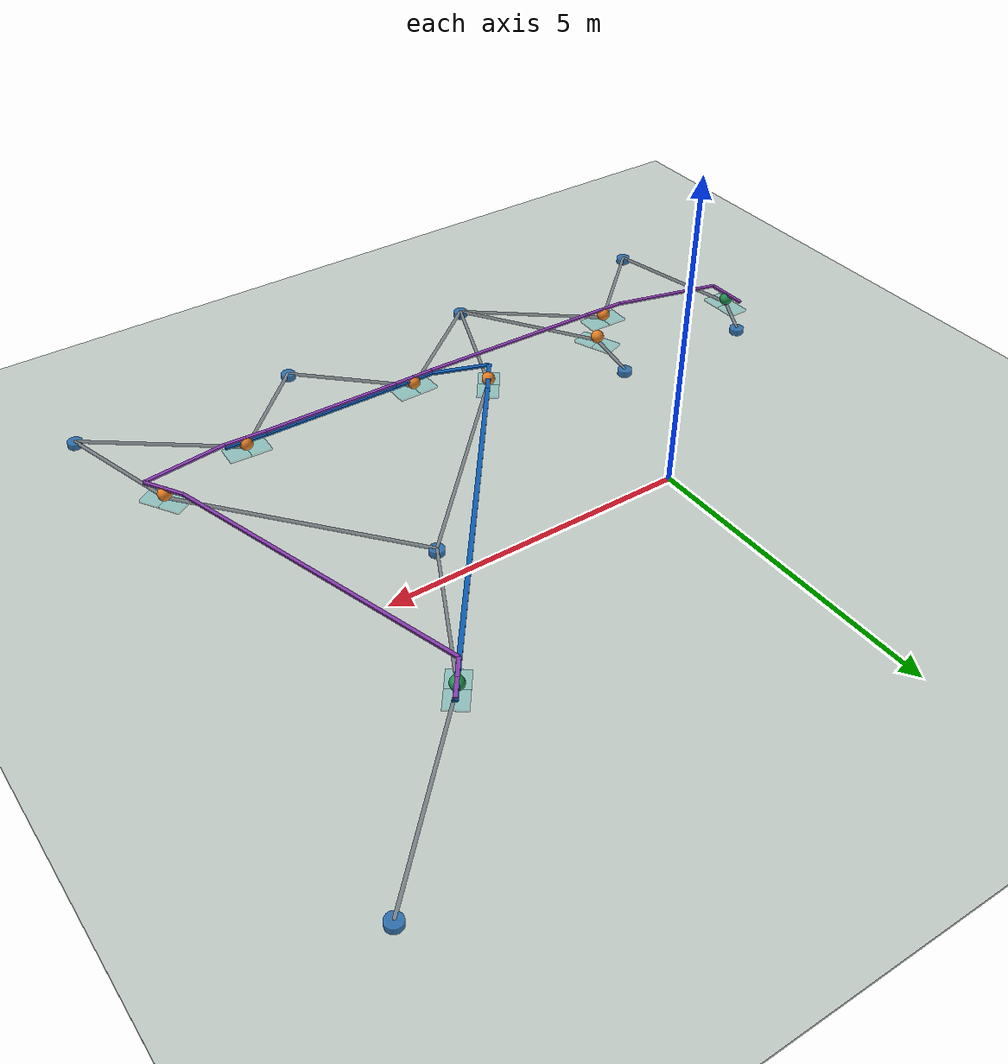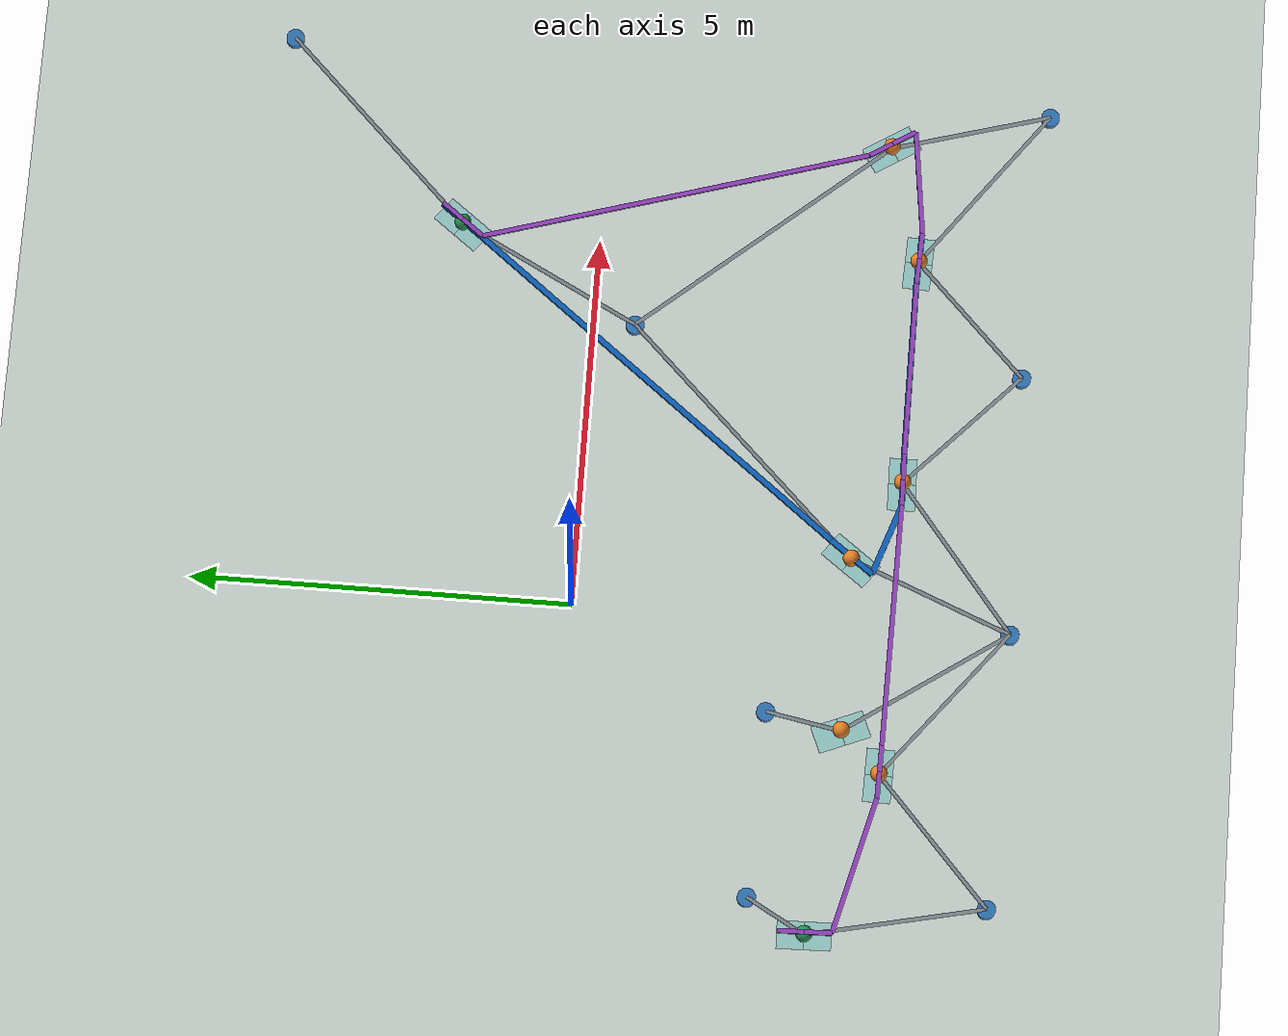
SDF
<?xml version='1.0' encoding='utf-8'?>
<sdf version="1.6">
  <world name="boxfusion_step30p1_00824_large_continuous_floor">
    <include>
      <uri>model://sun</uri>
    </include>
    <model name="step30p1_large_continuous_floor">
      <static>true</static>
      <pose>-15.0000 -15.0000 -0.0200 0 0 0</pose>
      <link name="link">
        <visual name="visual">
          <geometry>
            <box>
              <size>70.0000 70.0000 0.0400</size>
            </box>
          </geometry>
          <material>
            <ambient>0.760 0.800 0.780 1.000</ambient>
            <diffuse>0.760 0.800 0.780 1.000</diffuse>
          </material>
        </visual>
        <collision name="collision">
          <geometry>
            <box>
              <size>70.0000 70.0000 0.0400</size>
            </box>
          </geometry>
          <surface>
            <friction>
              <ode>
                <mu>1.0</mu>
                <mu2>1.0</mu2>
              </ode>
            </friction>
            <contact>
              <ode>
                <kp>1000000.0</kp>
                <kd>100.0</kd>
              </ode>
            </contact>
          </surface>
        </collision>
      </link>
    </model>
    <model name="carve_capsule_line_gw_00824_r1_r3_01_segment_0">
      <static>true</static>
      <pose>5.2008 1.9788 0.0300 0 0 -2.2212</pose>
      <link name="link">
        <visual name="visual">
          <geometry>
            <box>
              <size>0.3499 0.3600 0.0350</size>
            </box>
          </geometry>
          <material>
            <ambient>0.000 0.651 0.651 0.250</ambient>
            <diffuse>0.000 0.651 0.651 0.250</diffuse>
          </material>
        </visual>
      </link>
    </model>
    <model name="carve_capsule_line_gw_00824_r1_r3_01_segment_1">
      <static>true</static>
      <pose>4.9889 1.7003 0.0300 0 0 -2.2210</pose>
      <link name="link">
        <visual name="visual">
          <geometry>
            <box>
              <size>0.3500 0.3600 0.0350</size>
            </box>
          </geometry>
          <material>
            <ambient>0.000 0.651 0.651 0.250</ambient>
            <diffuse>0.000 0.651 0.651 0.250</diffuse>
          </material>
        </visual>
      </link>
    </model>
    <model name="carve_capsule_line_gw_00824_r3_r7_01_segment_0">
      <static>true</static>
      <pose>0.9765 -3.4474 0.0300 0 0 -2.2108</pose>
      <link name="link">
        <visual name="visual">
          <geometry>
            <box>
              <size>0.3500 0.3600 0.0350</size>
            </box>
          </geometry>
          <material>
            <ambient>0.000 0.651 0.651 0.250</ambient>
            <diffuse>0.000 0.651 0.651 0.250</diffuse>
          </material>
        </visual>
      </link>
    </model>
    <model name="carve_capsule_line_gw_00824_r3_r7_01_segment_1">
      <static>true</static>
      <pose>0.7674 -3.7282 0.0300 0 0 -2.2110</pose>
      <link name="link">
        <visual name="visual">
          <geometry>
            <box>
              <size>0.3500 0.3600 0.0350</size>
            </box>
          </geometry>
          <material>
            <ambient>0.000 0.651 0.651 0.250</ambient>
            <diffuse>0.000 0.651 0.651 0.250</diffuse>
          </material>
        </visual>
      </link>
    </model>
    <model name="carve_capsule_line_gw_00824_r3_r8_01_segment_0">
      <static>true</static>
      <pose>6.4952 -3.6257 0.0300 0 0 -1.0124</pose>
      <link name="link">
        <visual name="visual">
          <geometry>
            <box>
              <size>0.3499 0.3600 0.0350</size>
            </box>
          </geometry>
          <material>
            <ambient>0.000 0.651 0.651 0.250</ambient>
            <diffuse>0.000 0.651 0.651 0.250</diffuse>
          </material>
        </visual>
      </link>
    </model>
    <model name="carve_capsule_line_gw_00824_r3_r8_01_segment_1">
      <static>true</static>
      <pose>6.6806 -3.9225 0.0300 0 0 -1.0123</pose>
      <link name="link">
        <visual name="visual">
          <geometry>
            <box>
              <size>0.3501 0.3600 0.0350</size>
            </box>
          </geometry>
          <material>
            <ambient>0.000 0.651 0.651 0.250</ambient>
            <diffuse>0.000 0.651 0.651 0.250</diffuse>
          </material>
        </visual>
      </link>
    </model>
    <model name="carve_capsule_line_gw_00824_r7_r11_02_segment_0">
      <static>true</static>
      <pose>1.7784 -4.1936 0.0300 0 0 0.0106</pose>
      <link name="link">
        <visual name="visual">
          <geometry>
            <box>
              <size>0.3499 0.3600 0.0350</size>
            </box>
          </geometry>
          <material>
            <ambient>0.000 0.651 0.651 0.250</ambient>
            <diffuse>0.000 0.651 0.651 0.250</diffuse>
          </material>
        </visual>
      </link>
    </model>
    <model name="carve_capsule_line_gw_00824_r7_r11_02_segment_1">
      <static>true</static>
      <pose>2.1283 -4.1898 0.0300 0 0 0.0109</pose>
      <link name="link">
        <visual name="visual">
          <geometry>
            <box>
              <size>0.3500 0.3600 0.0350</size>
            </box>
          </geometry>
          <material>
            <ambient>0.000 0.651 0.651 0.250</ambient>
            <diffuse>0.000 0.651 0.651 0.250</diffuse>
          </material>
        </visual>
      </link>
    </model>
    <model name="carve_capsule_line_gw_00824_r7_r14_01_segment_0">
      <static>true</static>
      <pose>-1.8001 -4.1300 0.0300 0 0 3.1133</pose>
      <link name="link">
        <visual name="visual">
          <geometry>
            <box>
              <size>0.3500 0.3600 0.0350</size>
            </box>
          </geometry>
          <material>
            <ambient>0.000 0.651 0.651 0.250</ambient>
            <diffuse>0.000 0.651 0.651 0.250</diffuse>
          </material>
        </visual>
      </link>
    </model>
    <model name="carve_capsule_line_gw_00824_r7_r14_01_segment_1">
      <static>true</static>
      <pose>-2.1500 -4.1200 0.0300 0 0 3.1133</pose>
      <link name="link">
        <visual name="visual">
          <geometry>
            <box>
              <size>0.3500 0.3600 0.0350</size>
            </box>
          </geometry>
          <material>
            <ambient>0.000 0.651 0.651 0.250</ambient>
            <diffuse>0.000 0.651 0.651 0.250</diffuse>
          </material>
        </visual>
      </link>
    </model>
    <model name="carve_capsule_line_gw_00824_r7_r15_01_segment_0">
      <static>true</static>
      <pose>-1.3666 -3.7637 0.0300 0 0 1.9584</pose>
      <link name="link">
        <visual name="visual">
          <geometry>
            <box>
              <size>0.3501 0.3600 0.0350</size>
            </box>
          </geometry>
          <material>
            <ambient>0.000 0.651 0.651 0.250</ambient>
            <diffuse>0.000 0.651 0.651 0.250</diffuse>
          </material>
        </visual>
      </link>
    </model>
    <model name="carve_capsule_line_gw_00824_r7_r15_01_segment_1">
      <static>true</static>
      <pose>-1.4989 -3.4397 0.0300 0 0 1.9582</pose>
      <link name="link">
        <visual name="visual">
          <geometry>
            <box>
              <size>0.3499 0.3600 0.0350</size>
            </box>
          </geometry>
          <material>
            <ambient>0.000 0.651 0.651 0.250</ambient>
            <diffuse>0.000 0.651 0.651 0.250</diffuse>
          </material>
        </visual>
      </link>
    </model>
    <model name="carve_capsule_line_gw_00824_r8_r11_01_segment_0">
      <static>true</static>
      <pose>5.1873 -4.2317 0.0300 0 0 3.0916</pose>
      <link name="link">
        <visual name="visual">
          <geometry>
            <box>
              <size>0.3500 0.3600 0.0350</size>
            </box>
          </geometry>
          <material>
            <ambient>0.000 0.651 0.651 0.250</ambient>
            <diffuse>0.000 0.651 0.651 0.250</diffuse>
          </material>
        </visual>
      </link>
    </model>
    <model name="carve_capsule_line_gw_00824_r8_r11_01_segment_1">
      <static>true</static>
      <pose>4.8377 -4.2142 0.0300 0 0 3.0916</pose>
      <link name="link">
        <visual name="visual">
          <geometry>
            <box>
              <size>0.3500 0.3600 0.0350</size>
            </box>
          </geometry>
          <material>
            <ambient>0.000 0.651 0.651 0.250</ambient>
            <diffuse>0.000 0.651 0.651 0.250</diffuse>
          </material>
        </visual>
      </link>
    </model>
    <model name="carve_capsule_line_gw_00824_r14_r16_01_segment_0">
      <static>true</static>
      <pose>-4.1353 -3.4756 0.0300 0 0 1.5954</pose>
      <link name="link">
        <visual name="visual">
          <geometry>
            <box>
              <size>0.3500 0.3600 0.0350</size>
            </box>
          </geometry>
          <material>
            <ambient>0.000 0.651 0.651 0.250</ambient>
            <diffuse>0.000 0.651 0.651 0.250</diffuse>
          </material>
        </visual>
      </link>
    </model>
    <model name="carve_capsule_line_gw_00824_r14_r16_01_segment_1">
      <static>true</static>
      <pose>-4.1439 -3.1258 0.0300 0 0 1.5951</pose>
      <link name="link">
        <visual name="visual">
          <geometry>
            <box>
              <size>0.3500 0.3600 0.0350</size>
            </box>
          </geometry>
          <material>
            <ambient>0.000 0.651 0.651 0.250</ambient>
            <diffuse>0.000 0.651 0.651 0.250</diffuse>
          </material>
        </visual>
      </link>
    </model>
    <model name="gateway_center_gw_00824_r14_r16_01">
      <static>true</static>
      <pose>-4.1396 -3.3007 0.1600 0 0 0</pose>
      <link name="link">
        <visual name="visual">
          <geometry>
            <sphere>
              <radius>0.1100</radius>
            </sphere>
          </geometry>
          <material>
            <ambient>0.141 0.569 0.325 1.000</ambient>
            <diffuse>0.141 0.569 0.325 1.000</diffuse>
          </material>
        </visual>
      </link>
    </model>
    <model name="gateway_center_gw_00824_r1_r3_01">
      <static>true</static>
      <pose>5.0948 1.8396 0.1600 0 0 0</pose>
      <link name="link">
        <visual name="visual">
          <geometry>
            <sphere>
              <radius>0.1100</radius>
            </sphere>
          </geometry>
          <material>
            <ambient>0.141 0.569 0.325 1.000</ambient>
            <diffuse>0.141 0.569 0.325 1.000</diffuse>
          </material>
        </visual>
      </link>
    </model>
    <model name="gateway_center_gw_00824_r3_r7_01">
      <static>true</static>
      <pose>0.8720 -3.5878 0.1600 0 0 0</pose>
      <link name="link">
        <visual name="visual">
          <geometry>
            <sphere>
              <radius>0.1100</radius>
            </sphere>
          </geometry>
          <material>
            <ambient>0.902 0.494 0.133 1.000</ambient>
            <diffuse>0.902 0.494 0.133 1.000</diffuse>
          </material>
        </visual>
      </link>
    </model>
    <model name="gateway_center_gw_00824_r3_r8_01">
      <static>true</static>
      <pose>6.5879 -3.7741 0.1600 0 0 0</pose>
      <link name="link">
        <visual name="visual">
          <geometry>
            <sphere>
              <radius>0.1100</radius>
            </sphere>
          </geometry>
          <material>
            <ambient>0.902 0.494 0.133 1.000</ambient>
            <diffuse>0.902 0.494 0.133 1.000</diffuse>
          </material>
        </visual>
      </link>
    </model>
    <model name="gateway_center_gw_00824_r7_r11_02">
      <static>true</static>
      <pose>1.9533 -4.1917 0.1600 0 0 0</pose>
      <link name="link">
        <visual name="visual">
          <geometry>
            <sphere>
              <radius>0.1100</radius>
            </sphere>
          </geometry>
          <material>
            <ambient>0.902 0.494 0.133 1.000</ambient>
            <diffuse>0.902 0.494 0.133 1.000</diffuse>
          </material>
        </visual>
      </link>
    </model>
    <model name="gateway_center_gw_00824_r7_r14_01">
      <static>true</static>
      <pose>-1.9750 -4.1250 0.1600 0 0 0</pose>
      <link name="link">
        <visual name="visual">
          <geometry>
            <sphere>
              <radius>0.1100</radius>
            </sphere>
          </geometry>
          <material>
            <ambient>0.902 0.494 0.133 1.000</ambient>
            <diffuse>0.902 0.494 0.133 1.000</diffuse>
          </material>
        </visual>
      </link>
    </model>
    <model name="gateway_center_gw_00824_r7_r15_01">
      <static>true</static>
      <pose>-1.4328 -3.6017 0.1600 0 0 0</pose>
      <link name="link">
        <visual name="visual">
          <geometry>
            <sphere>
              <radius>0.1100</radius>
            </sphere>
          </geometry>
          <material>
            <ambient>0.902 0.494 0.133 1.000</ambient>
            <diffuse>0.902 0.494 0.133 1.000</diffuse>
          </material>
        </visual>
      </link>
    </model>
    <model name="gateway_center_gw_00824_r8_r11_01">
      <static>true</static>
      <pose>5.0125 -4.2229 0.1600 0 0 0</pose>
      <link name="link">
        <visual name="visual">
          <geometry>
            <sphere>
              <radius>0.1100</radius>
            </sphere>
          </geometry>
          <material>
            <ambient>0.902 0.494 0.133 1.000</ambient>
            <diffuse>0.902 0.494 0.133 1.000</diffuse>
          </material>
        </visual>
      </link>
    </model>
    <model name="room_anchor_room_1">
      <static>true</static>
      <pose>7.5455 4.2997 0.0500 0 0 0</pose>
      <link name="link">
        <visual name="visual">
          <geometry>
            <cylinder>
              <radius>0.1200</radius>
              <length>0.1000</length>
            </cylinder>
          </geometry>
          <material>
            <ambient>0.149 0.435 0.710 0.880</ambient>
            <diffuse>0.149 0.435 0.710 0.880</diffuse>
          </material>
        </visual>
      </link>
    </model>
    <model name="room_anchor_room_3">
      <static>true</static>
      <pose>3.8632 -0.5406 0.0500 0 0 0</pose>
      <link name="link">
        <visual name="visual">
          <geometry>
            <cylinder>
              <radius>0.1200</radius>
              <length>0.1000</length>
            </cylinder>
          </geometry>
          <material>
            <ambient>0.149 0.435 0.710 0.880</ambient>
            <diffuse>0.149 0.435 0.710 0.880</diffuse>
          </material>
        </visual>
      </link>
    </model>
    <model name="room_anchor_room_7">
      <static>true</static>
      <pose>0.0142 -5.7105 0.0500 0 0 0</pose>
      <link name="link">
        <visual name="visual">
          <geometry>
            <cylinder>
              <radius>0.1200</radius>
              <length>0.1000</length>
            </cylinder>
          </geometry>
          <material>
            <ambient>0.149 0.435 0.710 0.880</ambient>
            <diffuse>0.149 0.435 0.710 0.880</diffuse>
          </material>
        </visual>
      </link>
    </model>
    <model name="room_anchor_room_8">
      <static>true</static>
      <pose>7.1842 -5.8564 0.0500 0 0 0</pose>
      <link name="link">
        <visual name="visual">
          <geometry>
            <cylinder>
              <radius>0.1200</radius>
              <length>0.1000</length>
            </cylinder>
          </geometry>
          <material>
            <ambient>0.149 0.435 0.710 0.880</ambient>
            <diffuse>0.149 0.435 0.710 0.880</diffuse>
          </material>
        </visual>
      </link>
    </model>
    <model name="room_anchor_room_11">
      <static>true</static>
      <pose>3.5119 -5.6729 0.0500 0 0 0</pose>
      <link name="link">
        <visual name="visual">
          <geometry>
            <cylinder>
              <radius>0.1200</radius>
              <length>0.1000</length>
            </cylinder>
          </geometry>
          <material>
            <ambient>0.149 0.435 0.710 0.880</ambient>
            <diffuse>0.149 0.435 0.710 0.880</diffuse>
          </material>
        </visual>
      </link>
    </model>
    <model name="room_anchor_room_14">
      <static>true</static>
      <pose>-3.6327 -5.6071 0.0500 0 0 0</pose>
      <link name="link">
        <visual name="visual">
          <geometry>
            <cylinder>
              <radius>0.1200</radius>
              <length>0.1000</length>
            </cylinder>
          </geometry>
          <material>
            <ambient>0.149 0.435 0.710 0.880</ambient>
            <diffuse>0.149 0.435 0.710 0.880</diffuse>
          </material>
        </visual>
      </link>
    </model>
    <model name="room_anchor_room_15">
      <static>true</static>
      <pose>-1.2492 -2.6157 0.0500 0 0 0</pose>
      <link name="link">
        <visual name="visual">
          <geometry>
            <cylinder>
              <radius>0.1200</radius>
              <length>0.1000</length>
            </cylinder>
          </geometry>
          <material>
            <ambient>0.149 0.435 0.710 0.880</ambient>
            <diffuse>0.149 0.435 0.710 0.880</diffuse>
          </material>
        </visual>
      </link>
    </model>
    <model name="room_anchor_room_16">
      <static>true</static>
      <pose>-3.7075 -2.5364 0.0500 0 0 0</pose>
      <link name="link">
        <visual name="visual">
          <geometry>
            <cylinder>
              <radius>0.1200</radius>
              <length>0.1000</length>
            </cylinder>
          </geometry>
          <material>
            <ambient>0.149 0.435 0.710 0.880</ambient>
            <diffuse>0.149 0.435 0.710 0.880</diffuse>
          </material>
        </visual>
      </link>
    </model>
    <model name="route_polyline_public_path_042_segment_0">
      <static>true</static>
      <pose>5.2008 1.9788 0.2000 0 0 -2.2212</pose>
      <link name="link">
        <visual name="visual">
          <geometry>
            <box>
              <size>0.3499 0.0750 0.0350</size>
            </box>
          </geometry>
          <material>
            <ambient>0.039 0.361 0.706 0.950</ambient>
            <diffuse>0.039 0.361 0.706 0.950</diffuse>
          </material>
        </visual>
      </link>
    </model>
    <model name="route_polyline_public_path_042_segment_1">
      <static>true</static>
      <pose>4.9889 1.7003 0.2000 0 0 -2.2210</pose>
      <link name="link">
        <visual name="visual">
          <geometry>
            <box>
              <size>0.3500 0.0750 0.0350</size>
            </box>
          </geometry>
          <material>
            <ambient>0.039 0.361 0.706 0.950</ambient>
            <diffuse>0.039 0.361 0.706 0.950</diffuse>
          </material>
        </visual>
      </link>
    </model>
    <model name="route_polyline_public_path_042_segment_2">
      <static>true</static>
      <pose>2.9820 -0.8731 0.2000 0 0 -2.2338</pose>
      <link name="link">
        <visual name="visual">
          <geometry>
            <box>
              <size>6.1768 0.0750 0.0350</size>
            </box>
          </geometry>
          <material>
            <ambient>0.039 0.361 0.706 0.950</ambient>
            <diffuse>0.039 0.361 0.706 0.950</diffuse>
          </material>
        </visual>
      </link>
    </model>
    <model name="route_polyline_public_path_042_segment_3">
      <static>true</static>
      <pose>0.9765 -3.4474 0.2000 0 0 -2.2108</pose>
      <link name="link">
        <visual name="visual">
          <geometry>
            <box>
              <size>0.3500 0.0750 0.0350</size>
            </box>
          </geometry>
          <material>
            <ambient>0.039 0.361 0.706 0.950</ambient>
            <diffuse>0.039 0.361 0.706 0.950</diffuse>
          </material>
        </visual>
      </link>
    </model>
    <model name="route_polyline_public_path_042_segment_4">
      <static>true</static>
      <pose>0.7674 -3.7282 0.2000 0 0 -2.2110</pose>
      <link name="link">
        <visual name="visual">
          <geometry>
            <box>
              <size>0.3500 0.0750 0.0350</size>
            </box>
          </geometry>
          <material>
            <ambient>0.039 0.361 0.706 0.950</ambient>
            <diffuse>0.039 0.361 0.706 0.950</diffuse>
          </material>
        </visual>
      </link>
    </model>
    <model name="route_polyline_public_path_042_segment_5">
      <static>true</static>
      <pose>1.1332 -4.0320 0.2000 0 0 -0.3345</pose>
      <link name="link">
        <visual name="visual">
          <geometry>
            <box>
              <size>0.9957 0.0750 0.0350</size>
            </box>
          </geometry>
          <material>
            <ambient>0.039 0.361 0.706 0.950</ambient>
            <diffuse>0.039 0.361 0.706 0.950</diffuse>
          </material>
        </visual>
      </link>
    </model>
    <model name="route_polyline_public_path_042_segment_6">
      <static>true</static>
      <pose>1.7784 -4.1936 0.2000 0 0 0.0106</pose>
      <link name="link">
        <visual name="visual">
          <geometry>
            <box>
              <size>0.3499 0.0750 0.0350</size>
            </box>
          </geometry>
          <material>
            <ambient>0.039 0.361 0.706 0.950</ambient>
            <diffuse>0.039 0.361 0.706 0.950</diffuse>
          </material>
        </visual>
      </link>
    </model>
    <model name="route_polyline_public_path_042_segment_7">
      <static>true</static>
      <pose>2.1283 -4.1898 0.2000 0 0 0.0109</pose>
      <link name="link">
        <visual name="visual">
          <geometry>
            <box>
              <size>0.3500 0.0750 0.0350</size>
            </box>
          </geometry>
          <material>
            <ambient>0.039 0.361 0.706 0.950</ambient>
            <diffuse>0.039 0.361 0.706 0.950</diffuse>
          </material>
        </visual>
      </link>
    </model>
    <model name="route_polyline_public_path_042_segment_8">
      <static>true</static>
      <pose>3.4831 -4.1966 0.2000 0 0 -0.0074</pose>
      <link name="link">
        <visual name="visual">
          <geometry>
            <box>
              <size>2.3597 0.0750 0.0350</size>
            </box>
          </geometry>
          <material>
            <ambient>0.039 0.361 0.706 0.950</ambient>
            <diffuse>0.039 0.361 0.706 0.950</diffuse>
          </material>
        </visual>
      </link>
    </model>
    <model name="route_polyline_public_path_042_segment_9">
      <static>true</static>
      <pose>4.8377 -4.2142 0.2000 0 0 -0.0500</pose>
      <link name="link">
        <visual name="visual">
          <geometry>
            <box>
              <size>0.3500 0.0750 0.0350</size>
            </box>
          </geometry>
          <material>
            <ambient>0.039 0.361 0.706 0.950</ambient>
            <diffuse>0.039 0.361 0.706 0.950</diffuse>
          </material>
        </visual>
      </link>
    </model>
    <model name="route_polyline_public_path_042_segment_10">
      <static>true</static>
      <pose>5.1873 -4.2317 0.2000 0 0 -0.0500</pose>
      <link name="link">
        <visual name="visual">
          <geometry>
            <box>
              <size>0.3500 0.0750 0.0350</size>
            </box>
          </geometry>
          <material>
            <ambient>0.039 0.361 0.706 0.950</ambient>
            <diffuse>0.039 0.361 0.706 0.950</diffuse>
          </material>
        </visual>
      </link>
    </model>
    <model name="route_polyline_long_structure_route_default_segment_0">
      <static>true</static>
      <pose>5.2008 1.9788 0.2600 0 0 -2.2212</pose>
      <link name="link">
        <visual name="visual">
          <geometry>
            <box>
              <size>0.3499 0.0600 0.0350</size>
            </box>
          </geometry>
          <material>
            <ambient>0.537 0.235 0.698 0.950</ambient>
            <diffuse>0.537 0.235 0.698 0.950</diffuse>
          </material>
        </visual>
      </link>
    </model>
    <model name="route_polyline_long_structure_route_default_segment_1">
      <static>true</static>
      <pose>4.9889 1.7003 0.2600 0 0 -2.2210</pose>
      <link name="link">
        <visual name="visual">
          <geometry>
            <box>
              <size>0.3500 0.0600 0.0350</size>
            </box>
          </geometry>
          <material>
            <ambient>0.537 0.235 0.698 0.950</ambient>
            <diffuse>0.537 0.235 0.698 0.950</diffuse>
          </material>
        </visual>
      </link>
    </model>
    <model name="route_polyline_long_structure_route_default_segment_2">
      <static>true</static>
      <pose>5.6427 -0.9582 0.2600 0 0 -1.2779</pose>
      <link name="link">
        <visual name="visual">
          <geometry>
            <box>
              <size>5.2625 0.0600 0.0350</size>
            </box>
          </geometry>
          <material>
            <ambient>0.537 0.235 0.698 0.950</ambient>
            <diffuse>0.537 0.235 0.698 0.950</diffuse>
          </material>
        </visual>
      </link>
    </model>
    <model name="route_polyline_long_structure_route_default_segment_3">
      <static>true</static>
      <pose>6.4952 -3.6257 0.2600 0 0 -1.0124</pose>
      <link name="link">
        <visual name="visual">
          <geometry>
            <box>
              <size>0.3499 0.0600 0.0350</size>
            </box>
          </geometry>
          <material>
            <ambient>0.537 0.235 0.698 0.950</ambient>
            <diffuse>0.537 0.235 0.698 0.950</diffuse>
          </material>
        </visual>
      </link>
    </model>
    <model name="route_polyline_long_structure_route_default_segment_4">
      <static>true</static>
      <pose>6.6806 -3.9225 0.2600 0 0 -1.0123</pose>
      <link name="link">
        <visual name="visual">
          <geometry>
            <box>
              <size>0.3501 0.0600 0.0350</size>
            </box>
          </geometry>
          <material>
            <ambient>0.537 0.235 0.698 0.950</ambient>
            <diffuse>0.537 0.235 0.698 0.950</diffuse>
          </material>
        </visual>
      </link>
    </model>
    <model name="route_polyline_long_structure_route_default_segment_5">
      <static>true</static>
      <pose>6.0678 -4.1557 0.2600 0 0 -3.0221</pose>
      <link name="link">
        <visual name="visual">
          <geometry>
            <box>
              <size>1.4214 0.0600 0.0350</size>
            </box>
          </geometry>
          <material>
            <ambient>0.537 0.235 0.698 0.950</ambient>
            <diffuse>0.537 0.235 0.698 0.950</diffuse>
          </material>
        </visual>
      </link>
    </model>
    <model name="route_polyline_long_structure_route_default_segment_6">
      <static>true</static>
      <pose>5.1873 -4.2317 0.2600 0 0 3.0916</pose>
      <link name="link">
        <visual name="visual">
          <geometry>
            <box>
              <size>0.3500 0.0600 0.0350</size>
            </box>
          </geometry>
          <material>
            <ambient>0.537 0.235 0.698 0.950</ambient>
            <diffuse>0.537 0.235 0.698 0.950</diffuse>
          </material>
        </visual>
      </link>
    </model>
    <model name="route_polyline_long_structure_route_default_segment_7">
      <static>true</static>
      <pose>4.8377 -4.2142 0.2600 0 0 3.0916</pose>
      <link name="link">
        <visual name="visual">
          <geometry>
            <box>
              <size>0.3500 0.0600 0.0350</size>
            </box>
          </geometry>
          <material>
            <ambient>0.537 0.235 0.698 0.950</ambient>
            <diffuse>0.537 0.235 0.698 0.950</diffuse>
          </material>
        </visual>
      </link>
    </model>
    <model name="route_polyline_long_structure_route_default_segment_8">
      <static>true</static>
      <pose>3.4831 -4.1966 0.2600 0 0 3.1342</pose>
      <link name="link">
        <visual name="visual">
          <geometry>
            <box>
              <size>2.3597 0.0600 0.0350</size>
            </box>
          </geometry>
          <material>
            <ambient>0.537 0.235 0.698 0.950</ambient>
            <diffuse>0.537 0.235 0.698 0.950</diffuse>
          </material>
        </visual>
      </link>
    </model>
    <model name="route_polyline_long_structure_route_default_segment_9">
      <static>true</static>
      <pose>2.1283 -4.1898 0.2600 0 0 -3.1307</pose>
      <link name="link">
        <visual name="visual">
          <geometry>
            <box>
              <size>0.3500 0.0600 0.0350</size>
            </box>
          </geometry>
          <material>
            <ambient>0.537 0.235 0.698 0.950</ambient>
            <diffuse>0.537 0.235 0.698 0.950</diffuse>
          </material>
        </visual>
      </link>
    </model>
    <model name="route_polyline_long_structure_route_default_segment_10">
      <static>true</static>
      <pose>1.7784 -4.1936 0.2600 0 0 -3.1310</pose>
      <link name="link">
        <visual name="visual">
          <geometry>
            <box>
              <size>0.3499 0.0600 0.0350</size>
            </box>
          </geometry>
          <material>
            <ambient>0.537 0.235 0.698 0.950</ambient>
            <diffuse>0.537 0.235 0.698 0.950</diffuse>
          </material>
        </visual>
      </link>
    </model>
    <model name="route_polyline_long_structure_route_default_segment_11">
      <static>true</static>
      <pose>-0.0109 -4.1652 0.2600 0 0 3.1229</pose>
      <link name="link">
        <visual name="visual">
          <geometry>
            <box>
              <size>3.2291 0.0600 0.0350</size>
            </box>
          </geometry>
          <material>
            <ambient>0.537 0.235 0.698 0.950</ambient>
            <diffuse>0.537 0.235 0.698 0.950</diffuse>
          </material>
        </visual>
      </link>
    </model>
    <model name="route_polyline_long_structure_route_default_segment_12">
      <static>true</static>
      <pose>-1.8001 -4.1300 0.2600 0 0 3.1133</pose>
      <link name="link">
        <visual name="visual">
          <geometry>
            <box>
              <size>0.3500 0.0600 0.0350</size>
            </box>
          </geometry>
          <material>
            <ambient>0.537 0.235 0.698 0.950</ambient>
            <diffuse>0.537 0.235 0.698 0.950</diffuse>
          </material>
        </visual>
      </link>
    </model>
    <model name="route_polyline_long_structure_route_default_segment_13">
      <static>true</static>
      <pose>-2.1500 -4.1200 0.2600 0 0 3.1133</pose>
      <link name="link">
        <visual name="visual">
          <geometry>
            <box>
              <size>0.3500 0.0600 0.0350</size>
            </box>
          </geometry>
          <material>
            <ambient>0.537 0.235 0.698 0.950</ambient>
            <diffuse>0.537 0.235 0.698 0.950</diffuse>
          </material>
        </visual>
      </link>
    </model>
    <model name="route_polyline_long_structure_route_default_segment_14">
      <static>true</static>
      <pose>-3.2279 -3.8828 0.2600 0 0 2.8899</pose>
      <link name="link">
        <visual name="visual">
          <geometry>
            <box>
              <size>1.8649 0.0600 0.0350</size>
            </box>
          </geometry>
          <material>
            <ambient>0.537 0.235 0.698 0.950</ambient>
            <diffuse>0.537 0.235 0.698 0.950</diffuse>
          </material>
        </visual>
      </link>
    </model>
    <model name="route_polyline_long_structure_route_default_segment_15">
      <static>true</static>
      <pose>-4.1353 -3.4756 0.2600 0 0 1.5954</pose>
      <link name="link">
        <visual name="visual">
          <geometry>
            <box>
              <size>0.3500 0.0600 0.0350</size>
            </box>
          </geometry>
          <material>
            <ambient>0.537 0.235 0.698 0.950</ambient>
            <diffuse>0.537 0.235 0.698 0.950</diffuse>
          </material>
        </visual>
      </link>
    </model>
    <model name="route_polyline_long_structure_route_default_segment_16">
      <static>true</static>
      <pose>-4.1439 -3.1258 0.2600 0 0 1.5951</pose>
      <link name="link">
        <visual name="visual">
          <geometry>
            <box>
              <size>0.3500 0.0600 0.0350</size>
            </box>
          </geometry>
          <material>
            <ambient>0.537 0.235 0.698 0.950</ambient>
            <diffuse>0.537 0.235 0.698 0.950</diffuse>
          </material>
        </visual>
      </link>
    </model>
    <model name="topology_edge_r14_r16_segment_0">
      <static>true</static>
      <pose>-3.8861 -4.4539 0.0900 0 0 1.7871</pose>
      <link name="link">
        <visual name="visual">
          <geometry>
            <box>
              <size>2.3614 0.0450 0.0350</size>
            </box>
          </geometry>
          <material>
            <ambient>0.322 0.345 0.400 0.580</ambient>
            <diffuse>0.322 0.345 0.400 0.580</diffuse>
          </material>
        </visual>
      </link>
    </model>
    <model name="topology_edge_r14_r16_segment_1">
      <static>true</static>
      <pose>-3.9235 -2.9185 0.0900 0 0 1.0562</pose>
      <link name="link">
        <visual name="visual">
          <geometry>
            <box>
              <size>0.8780 0.0450 0.0350</size>
            </box>
          </geometry>
          <material>
            <ambient>0.322 0.345 0.400 0.580</ambient>
            <diffuse>0.322 0.345 0.400 0.580</diffuse>
          </material>
        </visual>
      </link>
    </model>
    <model name="topology_edge_r1_r3_segment_0">
      <static>true</static>
      <pose>6.3201 3.0696 0.0900 0 0 -2.3543</pose>
      <link name="link">
        <visual name="visual">
          <geometry>
            <box>
              <size>3.4725 0.0450 0.0350</size>
            </box>
          </geometry>
          <material>
            <ambient>0.322 0.345 0.400 0.580</ambient>
            <diffuse>0.322 0.345 0.400 0.580</diffuse>
          </material>
        </visual>
      </link>
    </model>
    <model name="topology_edge_r1_r3_segment_1">
      <static>true</static>
      <pose>4.4790 0.6495 0.0900 0 0 -2.0483</pose>
      <link name="link">
        <visual name="visual">
          <geometry>
            <box>
              <size>2.6800 0.0450 0.0350</size>
            </box>
          </geometry>
          <material>
            <ambient>0.322 0.345 0.400 0.580</ambient>
            <diffuse>0.322 0.345 0.400 0.580</diffuse>
          </material>
        </visual>
      </link>
    </model>
    <model name="topology_edge_r3_r7_segment_0">
      <static>true</static>
      <pose>2.3676 -2.0642 0.0900 0 0 -2.3469</pose>
      <link name="link">
        <visual name="visual">
          <geometry>
            <box>
              <size>4.2700 0.0450 0.0350</size>
            </box>
          </geometry>
          <material>
            <ambient>0.322 0.345 0.400 0.580</ambient>
            <diffuse>0.322 0.345 0.400 0.580</diffuse>
          </material>
        </visual>
      </link>
    </model>
    <model name="topology_edge_r3_r7_segment_1">
      <static>true</static>
      <pose>0.4431 -4.6491 0.0900 0 0 -1.9548</pose>
      <link name="link">
        <visual name="visual">
          <geometry>
            <box>
              <size>2.2895 0.0450 0.0350</size>
            </box>
          </geometry>
          <material>
            <ambient>0.322 0.345 0.400 0.580</ambient>
            <diffuse>0.322 0.345 0.400 0.580</diffuse>
          </material>
        </visual>
      </link>
    </model>
    <model name="topology_edge_r3_r8_segment_0">
      <static>true</static>
      <pose>5.2256 -2.1574 0.0900 0 0 -0.8706</pose>
      <link name="link">
        <visual name="visual">
          <geometry>
            <box>
              <size>4.2284 0.0450 0.0350</size>
            </box>
          </geometry>
          <material>
            <ambient>0.322 0.345 0.400 0.580</ambient>
            <diffuse>0.322 0.345 0.400 0.580</diffuse>
          </material>
        </visual>
      </link>
    </model>
    <model name="topology_edge_r3_r8_segment_1">
      <static>true</static>
      <pose>6.8861 -4.8152 0.0900 0 0 -1.2919</pose>
      <link name="link">
        <visual name="visual">
          <geometry>
            <box>
              <size>2.1660 0.0450 0.0350</size>
            </box>
          </geometry>
          <material>
            <ambient>0.322 0.345 0.400 0.580</ambient>
            <diffuse>0.322 0.345 0.400 0.580</diffuse>
          </material>
        </visual>
      </link>
    </model>
    <model name="topology_edge_r7_r11_segment_0">
      <static>true</static>
      <pose>0.9838 -4.9511 0.0900 0 0 0.6644</pose>
      <link name="link">
        <visual name="visual">
          <geometry>
            <box>
              <size>2.4631 0.0450 0.0350</size>
            </box>
          </geometry>
          <material>
            <ambient>0.322 0.345 0.400 0.580</ambient>
            <diffuse>0.322 0.345 0.400 0.580</diffuse>
          </material>
        </visual>
      </link>
    </model>
    <model name="topology_edge_r7_r11_segment_1">
      <static>true</static>
      <pose>2.7326 -4.9323 0.0900 0 0 -0.7599</pose>
      <link name="link">
        <visual name="visual">
          <geometry>
            <box>
              <size>2.1502 0.0450 0.0350</size>
            </box>
          </geometry>
          <material>
            <ambient>0.322 0.345 0.400 0.580</ambient>
            <diffuse>0.322 0.345 0.400 0.580</diffuse>
          </material>
        </visual>
      </link>
    </model>
    <model name="topology_edge_r7_r14_segment_0">
      <static>true</static>
      <pose>-0.9804 -4.9177 0.0900 0 0 2.4687</pose>
      <link name="link">
        <visual name="visual">
          <geometry>
            <box>
              <size>2.5438 0.0450 0.0350</size>
            </box>
          </geometry>
          <material>
            <ambient>0.322 0.345 0.400 0.580</ambient>
            <diffuse>0.322 0.345 0.400 0.580</diffuse>
          </material>
        </visual>
      </link>
    </model>
    <model name="topology_edge_r7_r14_segment_1">
      <static>true</static>
      <pose>-2.8038 -4.8660 0.0900 0 0 -2.4121</pose>
      <link name="link">
        <visual name="visual">
          <geometry>
            <box>
              <size>2.2236 0.0450 0.0350</size>
            </box>
          </geometry>
          <material>
            <ambient>0.322 0.345 0.400 0.580</ambient>
            <diffuse>0.322 0.345 0.400 0.580</diffuse>
          </material>
        </visual>
      </link>
    </model>
    <model name="topology_edge_r7_r15_segment_0">
      <static>true</static>
      <pose>-0.7093 -4.6561 0.0900 0 0 2.1722</pose>
      <link name="link">
        <visual name="visual">
          <geometry>
            <box>
              <size>2.5575 0.0450 0.0350</size>
            </box>
          </geometry>
          <material>
            <ambient>0.322 0.345 0.400 0.580</ambient>
            <diffuse>0.322 0.345 0.400 0.580</diffuse>
          </material>
        </visual>
      </link>
    </model>
    <model name="topology_edge_r7_r15_segment_1">
      <static>true</static>
      <pose>-1.3410 -3.1087 0.0900 0 0 1.3867</pose>
      <link name="link">
        <visual name="visual">
          <geometry>
            <box>
              <size>1.0029 0.0450 0.0350</size>
            </box>
          </geometry>
          <material>
            <ambient>0.322 0.345 0.400 0.580</ambient>
            <diffuse>0.322 0.345 0.400 0.580</diffuse>
          </material>
        </visual>
      </link>
    </model>
    <model name="topology_edge_r8_r11_segment_0">
      <static>true</static>
      <pose>6.0983 -5.0396 0.0900 0 0 2.4967</pose>
      <link name="link">
        <visual name="visual">
          <geometry>
            <box>
              <size>2.7175 0.0450 0.0350</size>
            </box>
          </geometry>
          <material>
            <ambient>0.322 0.345 0.400 0.580</ambient>
            <diffuse>0.322 0.345 0.400 0.580</diffuse>
          </material>
        </visual>
      </link>
    </model>
    <model name="topology_edge_r8_r11_segment_1">
      <static>true</static>
      <pose>4.2622 -4.9479 0.0900 0 0 -2.3733</pose>
      <link name="link">
        <visual name="visual">
          <geometry>
            <box>
              <size>2.0867 0.0450 0.0350</size>
            </box>
          </geometry>
          <material>
            <ambient>0.322 0.345 0.400 0.580</ambient>
            <diffuse>0.322 0.345 0.400 0.580</diffuse>
          </material>
        </visual>
      </link>
    </model>
  </world>
</sdf>
